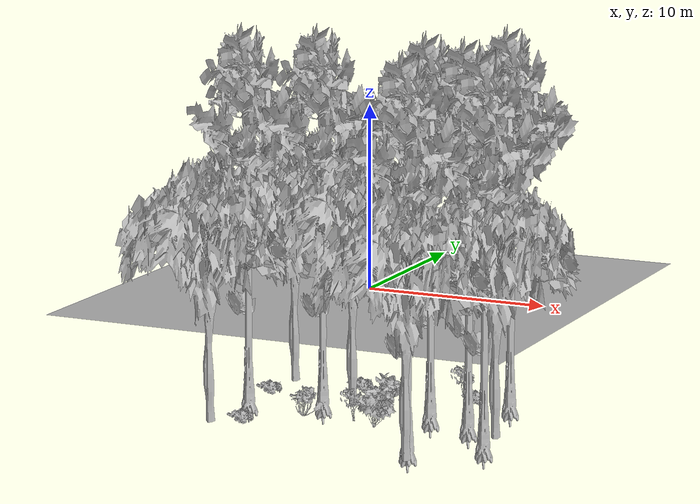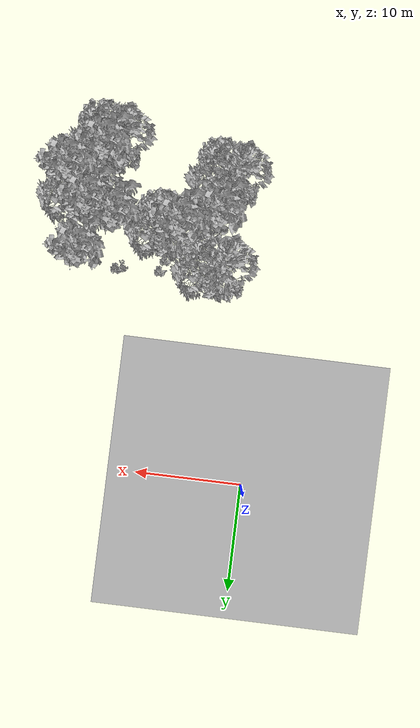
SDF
<sdf version="1.7">
 <world name="default">
  <model name="ground_plane">
   <static>1</static>
   <link name="link">
    <collision name="collision">
     <pose>-50 0 0 0 -0 0</pose>
     <geometry><plane><normal>0 0 1</normal><size>80 80</size></plane></geometry>
     <surface><contact><ode><min_depth>0.01</min_depth><max_vel>0</max_vel></ode></contact></surface>
    </collision>
    <visual name="grass">
     <cast_shadows>0</cast_shadows>
     <geometry>
      <mesh>
       <scale>0.46714285714285714 0.46714285714285714 0.1</scale>
       <uri>file://grass_plane/meshes/grass_plane.dae</uri>
      </mesh>
     </geometry>
    </visual>
   </link>
  </model>
  <model name="Tree 45">
   <static>1</static>
   <pose>17.341034068581827 -24.38808619244524 0 1.57079 -0 0</pose>
   <link name="link">
    <collision name="collision">
     <geometry><mesh><scale>3.5 5 3.5</scale><uri>model://tree_2/meshes/tree_2.obj</uri></mesh></geometry>
    </collision>
    <visual name="visual">
     <geometry><mesh><scale>3.5 5 3.5</scale><uri>model://tree_2/meshes/tree_2.obj</uri></mesh></geometry>
    </visual>
   </link>
  </model>
  <model name="Tree 241">
   <static>1</static>
   <pose>8.056977470913061 -22.43097939130438 0 1.57079 -0 0</pose>
   <link name="link">
    <collision name="collision">
     <geometry><mesh><scale>3.5 5 3.5</scale><uri>model://tree_9/meshes/tree_9.obj</uri></mesh></geometry>
    </collision>
    <visual name="visual">
     <geometry><mesh><scale>3.5 5 3.5</scale><uri>model://tree_9/meshes/tree_9.obj</uri></mesh></geometry>
    </visual>
   </link>
  </model>
  <model name="Tree 246">
   <static>1</static>
   <pose>4.660607472636357 -27.269437276705155 0 1.57079 -0 0</pose>
   <link name="link">
    <collision name="collision">
     <geometry><mesh><scale>3.5 5 3.5</scale><uri>model://tree_2/meshes/tree_2.obj</uri></mesh></geometry>
    </collision>
    <visual name="visual">
     <geometry><mesh><scale>3.5 5 3.5</scale><uri>model://tree_2/meshes/tree_2.obj</uri></mesh></geometry>
    </visual>
   </link>
  </model>
  <model name="Tree 319">
   <static>1</static>
   <pose>16.000661501970043 -19.181011717775142 0 1.57079 -0 0</pose>
   <link name="link">
    <collision name="collision">
     <geometry><mesh><scale>3.5 5 3.5</scale><uri>model://tree_9/meshes/tree_9.obj</uri></mesh></geometry>
    </collision>
    <visual name="visual">
     <geometry><mesh><scale>3.5 5 3.5</scale><uri>model://tree_9/meshes/tree_9.obj</uri></mesh></geometry>
    </visual>
   </link>
  </model>
  <model name="Tree 330">
   <static>1</static>
   <pose>17.570707357087798 -26.02601111910097 0 1.57079 -0 0</pose>
   <link name="link">
    <collision name="collision">
     <geometry><mesh><scale>3.5 5 3.5</scale><uri>model://tree_9/meshes/tree_9.obj</uri></mesh></geometry>
    </collision>
    <visual name="visual">
     <geometry><mesh><scale>3.5 5 3.5</scale><uri>model://tree_9/meshes/tree_9.obj</uri></mesh></geometry>
    </visual>
   </link>
  </model>
  <model name="Tree 434">
   <static>1</static>
   <pose>4.790798195640285 -23.508612217637477 0 1.57079 -0 0</pose>
   <link name="link">
    <collision name="collision">
     <geometry><mesh><scale>3.5 5 3.5</scale><uri>model://tree_9/meshes/tree_9.obj</uri></mesh></geometry>
    </collision>
    <visual name="visual">
     <geometry><mesh><scale>3.5 5 3.5</scale><uri>model://tree_9/meshes/tree_9.obj</uri></mesh></geometry>
    </visual>
   </link>
  </model>
  <model name="Tree 520">
   <static>1</static>
   <pose>15.676996078682905 -23.315419953147007 0 1.57079 -0 0</pose>
   <link name="link">
    <collision name="collision">
     <geometry><mesh><scale>3.5 5 3.5</scale><uri>model://tree_9/meshes/tree_9.obj</uri></mesh></geometry>
    </collision>
    <visual name="visual">
     <geometry><mesh><scale>3.5 5 3.5</scale><uri>model://tree_9/meshes/tree_9.obj</uri></mesh></geometry>
    </visual>
   </link>
  </model>
  <model name="Tree 551">
   <static>1</static>
   <pose>9.347223739241116 -22.16304422903944 0 1.57079 -0 0</pose>
   <link name="link">
    <collision name="collision">
     <geometry><mesh><scale>3.5 5 3.5</scale><uri>model://tree_2/meshes/tree_2.obj</uri></mesh></geometry>
    </collision>
    <visual name="visual">
     <geometry><mesh><scale>3.5 5 3.5</scale><uri>model://tree_2/meshes/tree_2.obj</uri></mesh></geometry>
    </visual>
   </link>
  </model>
  <model name="Tree 581">
   <static>1</static>
   <pose>15.199433137323823 -29.25103912048792 0 1.57079 -0 0</pose>
   <link name="link">
    <collision name="collision">
     <geometry><mesh><scale>3.5 5 3.5</scale><uri>model://tree_2/meshes/tree_2.obj</uri></mesh></geometry>
    </collision>
    <visual name="visual">
     <geometry><mesh><scale>3.5 5 3.5</scale><uri>model://tree_2/meshes/tree_2.obj</uri></mesh></geometry>
    </visual>
   </link>
  </model>
  <model name="Tree 609">
   <static>1</static>
   <pose>14.79913892285866 -27.94000036556426 0 1.57079 -0 0</pose>
   <link name="link">
    <collision name="collision">
     <geometry><mesh><scale>3.5 5 3.5</scale><uri>model://tree_9/meshes/tree_9.obj</uri></mesh></geometry>
    </collision>
    <visual name="visual">
     <geometry><mesh><scale>3.5 5 3.5</scale><uri>model://tree_9/meshes/tree_9.obj</uri></mesh></geometry>
    </visual>
   </link>
  </model>
  <model name="Tree 618">
   <static>1</static>
   <pose>4.897714491211097 -19.125104038327674 0 1.57079 -0 0</pose>
   <link name="link">
    <collision name="collision">
     <geometry><mesh><scale>3.5 5 3.5</scale><uri>model://tree_2/meshes/tree_2.obj</uri></mesh></geometry>
    </collision>
    <visual name="visual">
     <geometry><mesh><scale>3.5 5 3.5</scale><uri>model://tree_2/meshes/tree_2.obj</uri></mesh></geometry>
    </visual>
   </link>
  </model>
  <model name="Tree 619">
   <static>1</static>
   <pose>13.453662071803386 -22.457530229895664 0 1.57079 -0 0</pose>
   <link name="link">
    <collision name="collision">
     <geometry><mesh><scale>3.5 5 3.5</scale><uri>model://tree_9/meshes/tree_9.obj</uri></mesh></geometry>
    </collision>
    <visual name="visual">
     <geometry><mesh><scale>3.5 5 3.5</scale><uri>model://tree_9/meshes/tree_9.obj</uri></mesh></geometry>
    </visual>
   </link>
  </model>
  <model name="Bush 6">
   <static>1</static>
   <pose>9.977484192695925 -18.964270746689344 0 1.57079 -0 0</pose>
   <link name="link">
    <collision name="collision">
     <geometry><mesh><scale>2 2 2</scale><uri>model://bush_2/meshes/bush_2.obj</uri></mesh></geometry>
     <surface><contact><collide_without_contact>false</collide_without_contact></contact></surface>
    </collision>
    <visual name="visual">
     <geometry><mesh><scale>2 2 2</scale><uri>model://bush_2/meshes/bush_2.obj</uri></mesh></geometry>
    </visual>
   </link>
  </model>
  <model name="Bush 53">
   <static>1</static>
   <pose>8.144611619916141 -24.60367692449595 0 1.57079 -0 0</pose>
   <link name="link">
    <collision name="collision">
     <geometry><mesh><scale>2 2 2</scale><uri>model://bush_4/meshes/bush_4.obj</uri></mesh></geometry>
     <surface><contact><collide_without_contact>false</collide_without_contact></contact></surface>
    </collision>
    <visual name="visual">
     <geometry><mesh><scale>2 2 2</scale><uri>model://bush_4/meshes/bush_4.obj</uri></mesh></geometry>
    </visual>
   </link>
  </model>
  <model name="Bush 72">
   <static>1</static>
   <pose>5.7475452514292655 -26.19094910515516 0 1.57079 -0 0</pose>
   <link name="link">
    <collision name="collision">
     <geometry><mesh><scale>2 2 2</scale><uri>model://bush_2/meshes/bush_2.obj</uri></mesh></geometry>
     <surface><contact><collide_without_contact>false</collide_without_contact></contact></surface>
    </collision>
    <visual name="visual">
     <geometry><mesh><scale>2 2 2</scale><uri>model://bush_2/meshes/bush_2.obj</uri></mesh></geometry>
    </visual>
   </link>
  </model>
  <model name="Bush 87">
   <static>1</static>
   <pose>10.589853644976358 -24.487337780096556 0 1.57079 -0 0</pose>
   <link name="link">
    <collision name="collision">
     <geometry><mesh><scale>2 2 2</scale><uri>model://bush_5/meshes/bush_5.obj</uri></mesh></geometry>
     <surface><contact><collide_without_contact>false</collide_without_contact></contact></surface>
    </collision>
    <visual name="visual">
     <geometry><mesh><scale>2 2 2</scale><uri>model://bush_5/meshes/bush_5.obj</uri></mesh></geometry>
    </visual>
   </link>
  </model>
  <model name="Bush 187">
   <static>1</static>
   <pose>10.877447635572977 -20.944118932644553 0 1.57079 -0 0</pose>
   <link name="link">
    <collision name="collision">
     <geometry><mesh><scale>2 2 2</scale><uri>model://bush_0/meshes/bush_0.obj</uri></mesh></geometry>
     <surface><contact><collide_without_contact>false</collide_without_contact></contact></surface>
    </collision>
    <visual name="visual">
     <geometry><mesh><scale>2 2 2</scale><uri>model://bush_0/meshes/bush_0.obj</uri></mesh></geometry>
    </visual>
   </link>
  </model>
  <model name="Bush 297">
   <static>1</static>
   <pose>14.0902651568572 -18.743555922106907 0 1.57079 -0 0</pose>
   <link name="link">
    <collision name="collision">
     <geometry><mesh><scale>2 2 2</scale><uri>model://bush_2/meshes/bush_2.obj</uri></mesh></geometry>
     <surface><contact><collide_without_contact>false</collide_without_contact></contact></surface>
    </collision>
    <visual name="visual">
     <geometry><mesh><scale>2 2 2</scale><uri>model://bush_2/meshes/bush_2.obj</uri></mesh></geometry>
    </visual>
   </link>
  </model>
  <model name="Bush 298">
   <static>1</static>
   <pose>11.838963294980353 -25.047728469093748 0 1.57079 -0 0</pose>
   <link name="link">
    <collision name="collision">
     <geometry><mesh><scale>2 2 2</scale><uri>model://bush_1/meshes/bush_1.obj</uri></mesh></geometry>
     <surface><contact><collide_without_contact>false</collide_without_contact></contact></surface>
    </collision>
    <visual name="visual">
     <geometry><mesh><scale>2 2 2</scale><uri>model://bush_1/meshes/bush_1.obj</uri></mesh></geometry>
    </visual>
   </link>
  </model>
  <model name="Bush 321">
   <static>1</static>
   <pose>13.497036327019359 -18.688548210763393 0 1.57079 -0 0</pose>
   <link name="link">
    <collision name="collision">
     <geometry><mesh><scale>2 2 2</scale><uri>model://bush_5/meshes/bush_5.obj</uri></mesh></geometry>
     <surface><contact><collide_without_contact>false</collide_without_contact></contact></surface>
    </collision>
    <visual name="visual">
     <geometry><mesh><scale>2 2 2</scale><uri>model://bush_5/meshes/bush_5.obj</uri></mesh></geometry>
    </visual>
   </link>
  </model>
  <model name="Bush 355">
   <static>1</static>
   <pose>4.6157005589300795 -21.07103273309278 0 1.57079 -0 0</pose>
   <link name="link">
    <collision name="collision">
     <geometry><mesh><scale>2 2 2</scale><uri>model://bush_2/meshes/bush_2.obj</uri></mesh></geometry>
     <surface><contact><collide_without_contact>false</collide_without_contact></contact></surface>
    </collision>
    <visual name="visual">
     <geometry><mesh><scale>2 2 2</scale><uri>model://bush_2/meshes/bush_2.obj</uri></mesh></geometry>
    </visual>
   </link>
  </model>
  <model name="Bush 464">
   <static>1</static>
   <pose>8.262977611204008 -18.79098544534842 0 1.57079 -0 0</pose>
   <link name="link">
    <collision name="collision">
     <geometry><mesh><scale>2 2 2</scale><uri>model://bush_2/meshes/bush_2.obj</uri></mesh></geometry>
     <surface><contact><collide_without_contact>false</collide_without_contact></contact></surface>
    </collision>
    <visual name="visual">
     <geometry><mesh><scale>2 2 2</scale><uri>model://bush_2/meshes/bush_2.obj</uri></mesh></geometry>
    </visual>
   </link>
  </model>
  <model name="Bush 528">
   <static>1</static>
   <pose>9.588110482572013 -20.01535868096117 0 1.57079 -0 0</pose>
   <link name="link">
    <collision name="collision">
     <geometry><mesh><scale>2 2 2</scale><uri>model://bush_2/meshes/bush_2.obj</uri></mesh></geometry>
     <surface><contact><collide_without_contact>false</collide_without_contact></contact></surface>
    </collision>
    <visual name="visual">
     <geometry><mesh><scale>2 2 2</scale><uri>model://bush_2/meshes/bush_2.obj</uri></mesh></geometry>
    </visual>
   </link>
  </model>
 </world>
</sdf>
